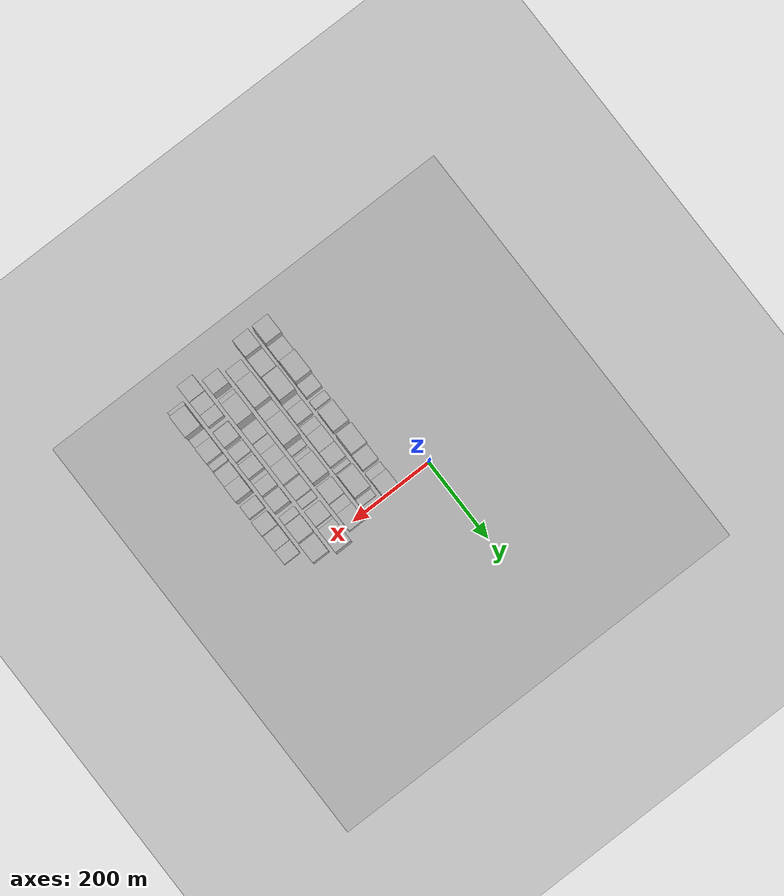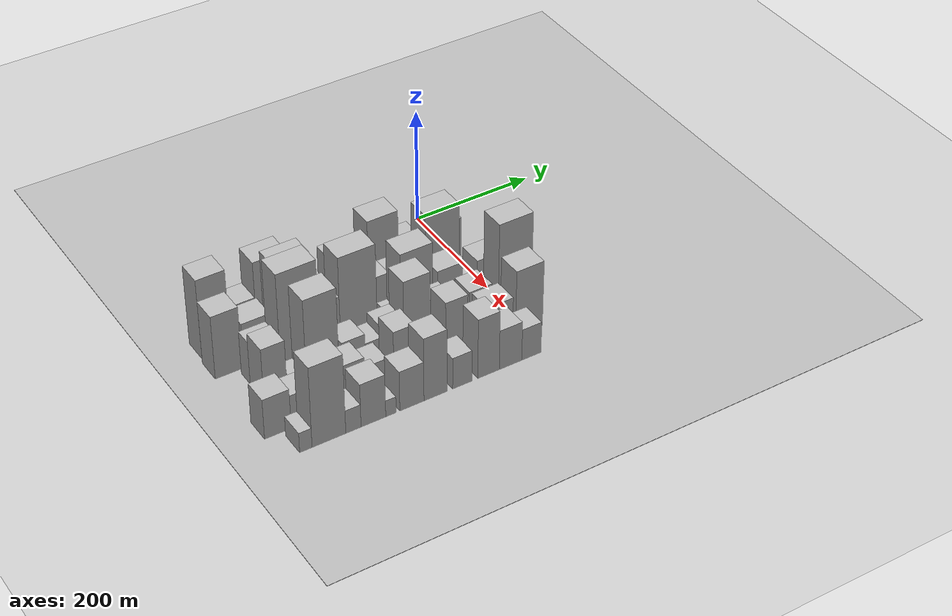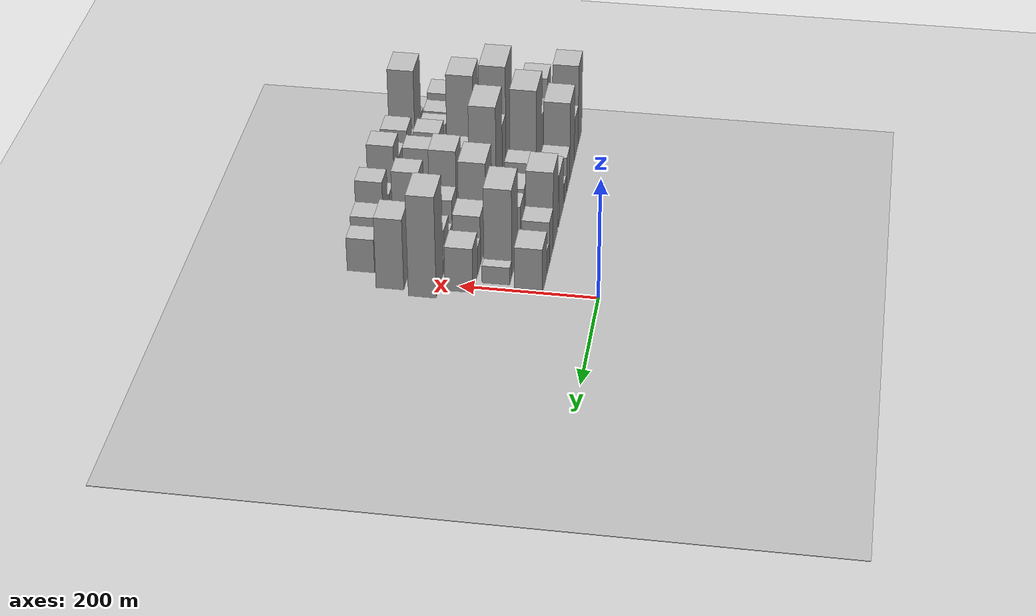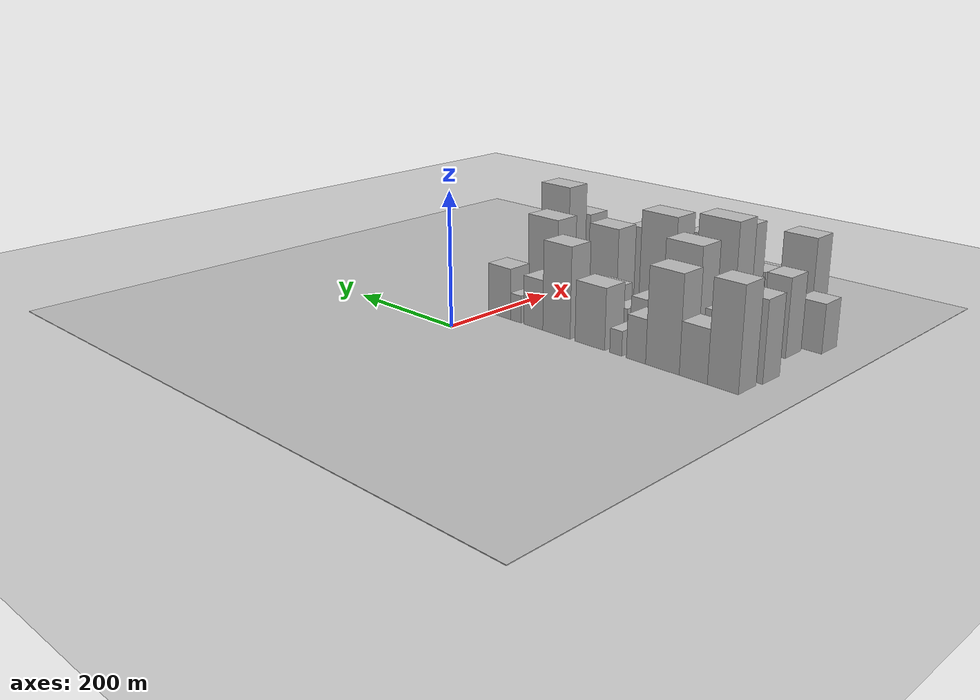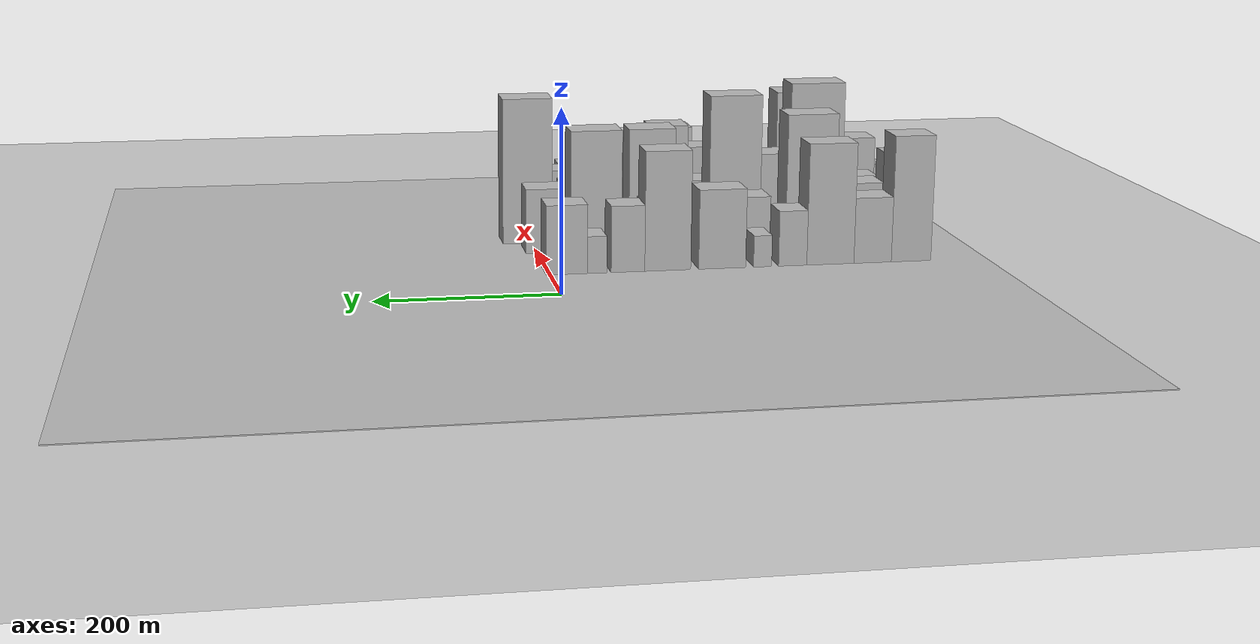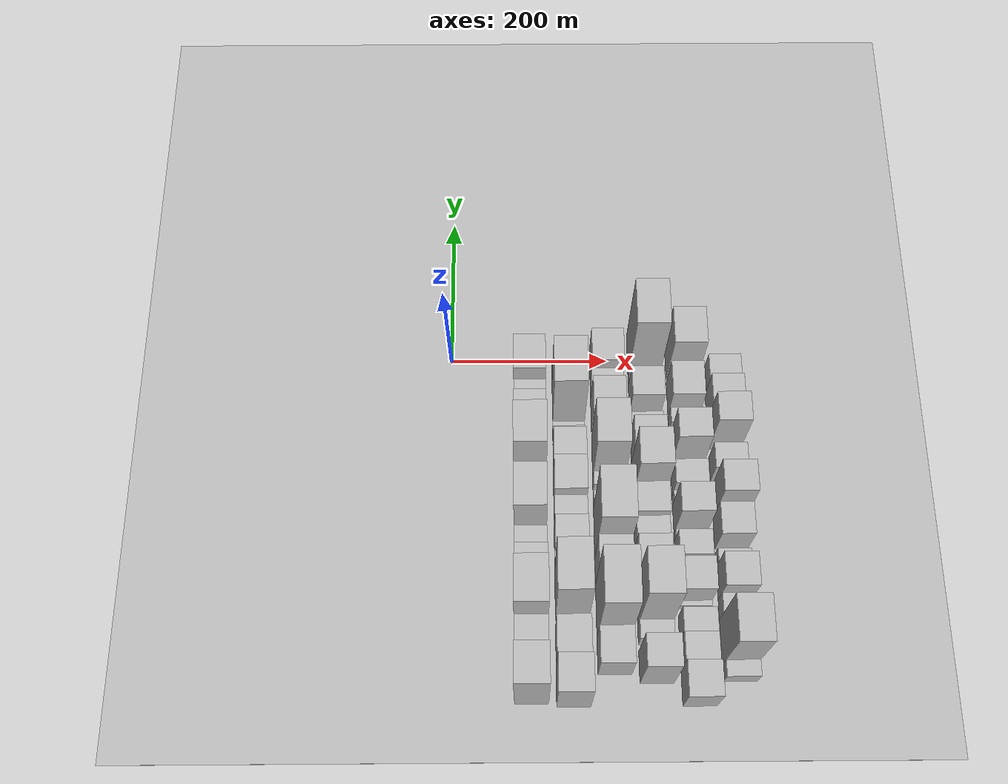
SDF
<sdf version="1.6">
 <world name="default">
  <include><name>ground_plane_1</name><uri>model://HANNAS_ground_plane</uri></include>
  <include>
   <name>ground_plane_2</name>
   <uri>model://HANNAS_ground_plane</uri>
   <pose>100 0 0  0 0 0</pose>
  </include>
  <model name="building_12">
   <static>1</static>
   <pose>100.0000 -411.0551 0 0.000000 0.000000 0.000000</pose>
   <link name="link">
    <pose>0 0 72.00 0 0 0</pose>
    <collision name="collision"><geometry><box><size>40.0000 46.2196 144.0000</size></box></geometry></collision>
    <visual name="visual">
     <cast_shadows>0</cast_shadows>
     <geometry><box><size>40.0000 46.2196 144.0000</size></box></geometry>
     <material>
      <script>
       <uri>model://HANNAS_wall/materials/scripts</uri>
       <uri>model://HANNAS_wall/materials/textures</uri>
       <name>vrc/HANNAS_wall</name>
      </script>
     </material>
    </visual>
   </link>
  </model>
  <model name="building_13">
   <static>1</static>
   <pose>100.0000 -366.1930 0 0.000000 0.000000 0.000000</pose>
   <link name="link">
    <pose>0 0 37.50 0 0 0</pose>
    <collision name="collision"><geometry><box><size>40.0000 43.5047 75.0000</size></box></geometry></collision>
    <visual name="visual">
     <cast_shadows>0</cast_shadows>
     <geometry><box><size>40.0000 43.5047 75.0000</size></box></geometry>
     <material>
      <script>
       <uri>model://HANNAS_wall/materials/scripts</uri>
       <uri>model://HANNAS_wall/materials/textures</uri>
       <name>vrc/HANNAS_wall</name>
      </script>
     </material>
    </visual>
   </link>
  </model>
  <model name="building_14">
   <static>1</static>
   <pose>100.0000 -317.1864 0 0.000000 0.000000 0.000000</pose>
   <link name="link">
    <pose>0 0 69.00 0 0 0</pose>
    <collision name="collision"><geometry><box><size>40.0000 54.5084 138.0000</size></box></geometry></collision>
    <visual name="visual">
     <cast_shadows>0</cast_shadows>
     <geometry><box><size>40.0000 54.5084 138.0000</size></box></geometry>
     <material>
      <script>
       <uri>model://HANNAS_wall/materials/scripts</uri>
       <uri>model://HANNAS_wall/materials/textures</uri>
       <name>vrc/HANNAS_wall</name>
      </script>
     </material>
    </visual>
   </link>
  </model>
  <model name="building_15">
   <static>1</static>
   <pose>100.0000 -273.7449 0 0.000000 0.000000 0.000000</pose>
   <link name="link">
    <pose>0 0 31.50 0 0 0</pose>
    <collision name="collision"><geometry><box><size>40.0000 32.3744 63.0000</size></box></geometry></collision>
    <visual name="visual">
     <cast_shadows>0</cast_shadows>
     <geometry><box><size>40.0000 32.3744 63.0000</size></box></geometry>
     <material>
      <script>
       <uri>model://HANNAS_wall/materials/scripts</uri>
       <uri>model://HANNAS_wall/materials/textures</uri>
       <name>vrc/HANNAS_wall</name>
      </script>
     </material>
    </visual>
   </link>
  </model>
  <model name="building_16">
   <static>1</static>
   <pose>100.0000 -239.2086 0 0.000000 0.000000 0.000000</pose>
   <link name="link">
    <pose>0 0 18.00 0 0 0</pose>
    <collision name="collision"><geometry><box><size>40.0000 20.6983 36.0000</size></box></geometry></collision>
    <visual name="visual">
     <cast_shadows>0</cast_shadows>
     <geometry><box><size>40.0000 20.6983 36.0000</size></box></geometry>
     <material>
      <script>
       <uri>model://HANNAS_wall/materials/scripts</uri>
       <uri>model://HANNAS_wall/materials/textures</uri>
       <name>vrc/HANNAS_wall</name>
      </script>
     </material>
    </visual>
   </link>
  </model>
  <model name="building_17">
   <static>1</static>
   <pose>100.0000 -193.1272 0 0.000000 0.000000 0.000000</pose>
   <link name="link">
    <pose>0 0 45.00 0 0 0</pose>
    <collision name="collision"><geometry><box><size>40.0000 53.4645 90.0000</size></box></geometry></collision>
    <visual name="visual">
     <cast_shadows>0</cast_shadows>
     <geometry><box><size>40.0000 53.4645 90.0000</size></box></geometry>
     <material>
      <script>
       <uri>model://HANNAS_wall/materials/scripts</uri>
       <uri>model://HANNAS_wall/materials/textures</uri>
       <name>vrc/HANNAS_wall</name>
      </script>
     </material>
    </visual>
   </link>
  </model>
  <model name="building_18">
   <static>1</static>
   <pose>100.0000 -131.4494 0 0.000000 0.000000 0.000000</pose>
   <link name="link">
    <pose>0 0 67.50 0 0 0</pose>
    <collision name="collision"><geometry><box><size>40.0000 51.8910 135.0000</size></box></geometry></collision>
    <visual name="visual">
     <cast_shadows>0</cast_shadows>
     <geometry><box><size>40.0000 51.8910 135.0000</size></box></geometry>
     <material>
      <script>
       <uri>model://HANNAS_wall/materials/scripts</uri>
       <uri>model://HANNAS_wall/materials/textures</uri>
       <name>vrc/HANNAS_wall</name>
      </script>
     </material>
    </visual>
   </link>
  </model>
  <model name="building_19">
   <static>1</static>
   <pose>100.0000 -86.6380 0 0.000000 0.000000 0.000000</pose>
   <link name="link">
    <pose>0 0 37.50 0 0 0</pose>
    <collision name="collision"><geometry><box><size>40.0000 37.7317 75.0000</size></box></geometry></collision>
    <visual name="visual">
     <cast_shadows>0</cast_shadows>
     <geometry><box><size>40.0000 37.7317 75.0000</size></box></geometry>
     <material>
      <script>
       <uri>model://HANNAS_wall/materials/scripts</uri>
       <uri>model://HANNAS_wall/materials/textures</uri>
       <name>vrc/HANNAS_wall</name>
      </script>
     </material>
    </visual>
   </link>
  </model>
  <model name="building_20">
   <static>1</static>
   <pose>100.0000 -52.0958 0 0.000000 0.000000 0.000000</pose>
   <link name="link">
    <pose>0 0 21.00 0 0 0</pose>
    <collision name="collision"><geometry><box><size>40.0000 21.3527 42.0000</size></box></geometry></collision>
    <visual name="visual">
     <cast_shadows>0</cast_shadows>
     <geometry><box><size>40.0000 21.3527 42.0000</size></box></geometry>
     <material>
      <script>
       <uri>model://HANNAS_wall/materials/scripts</uri>
       <uri>model://HANNAS_wall/materials/textures</uri>
       <name>vrc/HANNAS_wall</name>
      </script>
     </material>
    </visual>
   </link>
  </model>
  <model name="building_21">
   <static>1</static>
   <pose>100.0000 -18.5230 0 0.000000 0.000000 0.000000</pose>
   <link name="link">
    <pose>0 0 39.00 0 0 0</pose>
    <collision name="collision"><geometry><box><size>40.0000 45.7930 78.0000</size></box></geometry></collision>
    <visual name="visual">
     <cast_shadows>0</cast_shadows>
     <geometry><box><size>40.0000 45.7930 78.0000</size></box></geometry>
     <material>
      <script>
       <uri>model://HANNAS_wall/materials/scripts</uri>
       <uri>model://HANNAS_wall/materials/textures</uri>
       <name>vrc/HANNAS_wall</name>
      </script>
     </material>
    </visual>
   </link>
  </model>
  <model name="building_54">
   <static>1</static>
   <pose>149.0000 -416.5007 0 0.000000 0.000000 0.000000</pose>
   <link name="link">
    <pose>0 0 57.00 0 0 0</pose>
    <collision name="collision"><geometry><box><size>40.0000 43.0515 114.0000</size></box></geometry></collision>
    <visual name="visual">
     <cast_shadows>0</cast_shadows>
     <geometry><box><size>40.0000 43.0515 114.0000</size></box></geometry>
     <material>
      <script>
       <uri>model://HANNAS_wall/materials/scripts</uri>
       <uri>model://HANNAS_wall/materials/textures</uri>
       <name>vrc/HANNAS_wall</name>
      </script>
     </material>
    </visual>
   </link>
  </model>
  <model name="building_55">
   <static>1</static>
   <pose>149.0000 -368.9236 0 0.000000 0.000000 0.000000</pose>
   <link name="link">
    <pose>0 0 40.50 0 0 0</pose>
    <collision name="collision"><geometry><box><size>40.0000 46.1028 81.0000</size></box></geometry></collision>
    <visual name="visual">
     <cast_shadows>0</cast_shadows>
     <geometry><box><size>40.0000 46.1028 81.0000</size></box></geometry>
     <material>
      <script>
       <uri>model://HANNAS_wall/materials/scripts</uri>
       <uri>model://HANNAS_wall/materials/textures</uri>
       <name>vrc/HANNAS_wall</name>
      </script>
     </material>
    </visual>
   </link>
  </model>
  <model name="building_56">
   <static>1</static>
   <pose>149.0000 -307.5715 0 0.000000 0.000000 0.000000</pose>
   <link name="link">
    <pose>0 0 81.00 0 0 0</pose>
    <collision name="collision"><geometry><box><size>40.0000 58.6014 162.0000</size></box></geometry></collision>
    <visual name="visual">
     <cast_shadows>0</cast_shadows>
     <geometry><box><size>40.0000 58.6014 162.0000</size></box></geometry>
     <material>
      <script>
       <uri>model://HANNAS_wall/materials/scripts</uri>
       <uri>model://HANNAS_wall/materials/textures</uri>
       <name>vrc/HANNAS_wall</name>
      </script>
     </material>
    </visual>
   </link>
  </model>
  <model name="building_57">
   <static>1</static>
   <pose>149.0000 -269.1952 0 0.000000 0.000000 0.000000</pose>
   <link name="link">
    <pose>0 0 16.50 0 0 0</pose>
    <collision name="collision"><geometry><box><size>40.0000 18.1513 33.0000</size></box></geometry></collision>
    <visual name="visual">
     <cast_shadows>0</cast_shadows>
     <geometry><box><size>40.0000 18.1513 33.0000</size></box></geometry>
     <material>
      <script>
       <uri>model://HANNAS_wall/materials/scripts</uri>
       <uri>model://HANNAS_wall/materials/textures</uri>
       <name>vrc/HANNAS_wall</name>
      </script>
     </material>
    </visual>
   </link>
  </model>
  <model name="building_58">
   <static>1</static>
   <pose>149.0000 -242.4211 0 0.000000 0.000000 0.000000</pose>
   <link name="link">
    <pose>0 0 34.50 0 0 0</pose>
    <collision name="collision"><geometry><box><size>40.0000 35.3968 69.0000</size></box></geometry></collision>
    <visual name="visual">
     <cast_shadows>0</cast_shadows>
     <geometry><box><size>40.0000 35.3968 69.0000</size></box></geometry>
     <material>
      <script>
       <uri>model://HANNAS_wall/materials/scripts</uri>
       <uri>model://HANNAS_wall/materials/textures</uri>
       <name>vrc/HANNAS_wall</name>
      </script>
     </material>
    </visual>
   </link>
  </model>
  <model name="building_59">
   <static>1</static>
   <pose>149.0000 -206.5990 0 0.000000 0.000000 0.000000</pose>
   <link name="link">
    <pose>0 0 24.00 0 0 0</pose>
    <collision name="collision"><geometry><box><size>40.0000 24.2474 48.0000</size></box></geometry></collision>
    <visual name="visual">
     <cast_shadows>0</cast_shadows>
     <geometry><box><size>40.0000 24.2474 48.0000</size></box></geometry>
     <material>
      <script>
       <uri>model://HANNAS_wall/materials/scripts</uri>
       <uri>model://HANNAS_wall/materials/textures</uri>
       <name>vrc/HANNAS_wall</name>
      </script>
     </material>
    </visual>
   </link>
  </model>
  <model name="building_60">
   <static>1</static>
   <pose>149.0000 -172.9735 0 0.000000 0.000000 0.000000</pose>
   <link name="link">
    <pose>0 0 36.00 0 0 0</pose>
    <collision name="collision"><geometry><box><size>40.0000 43.0035 72.0000</size></box></geometry></collision>
    <visual name="visual">
     <cast_shadows>0</cast_shadows>
     <geometry><box><size>40.0000 43.0035 72.0000</size></box></geometry>
     <material>
      <script>
       <uri>model://HANNAS_wall/materials/scripts</uri>
       <uri>model://HANNAS_wall/materials/textures</uri>
       <name>vrc/HANNAS_wall</name>
      </script>
     </material>
    </visual>
   </link>
  </model>
  <model name="building_61">
   <static>1</static>
   <pose>149.0000 -132.5704 0 0.000000 0.000000 0.000000</pose>
   <link name="link">
    <pose>0 0 33.00 0 0 0</pose>
    <collision name="collision"><geometry><box><size>40.0000 37.8027 66.0000</size></box></geometry></collision>
    <visual name="visual">
     <cast_shadows>0</cast_shadows>
     <geometry><box><size>40.0000 37.8027 66.0000</size></box></geometry>
     <material>
      <script>
       <uri>model://HANNAS_wall/materials/scripts</uri>
       <uri>model://HANNAS_wall/materials/textures</uri>
       <name>vrc/HANNAS_wall</name>
      </script>
     </material>
    </visual>
   </link>
  </model>
  <model name="building_62">
   <static>1</static>
   <pose>149.0000 -103.8948 0 0.000000 0.000000 0.000000</pose>
   <link name="link">
    <pose>0 0 13.50 0 0 0</pose>
    <collision name="collision"><geometry><box><size>40.0000 11.5485 27.0000</size></box></geometry></collision>
    <visual name="visual">
     <cast_shadows>0</cast_shadows>
     <geometry><box><size>40.0000 11.5485 27.0000</size></box></geometry>
     <material>
      <script>
       <uri>model://HANNAS_wall/materials/scripts</uri>
       <uri>model://HANNAS_wall/materials/textures</uri>
       <name>vrc/HANNAS_wall</name>
      </script>
     </material>
    </visual>
   </link>
  </model>
  <model name="building_63">
   <static>1</static>
   <pose>149.0000 -91.8014 0 0.000000 0.000000 0.000000</pose>
   <link name="link">
    <pose>0 0 7.50 0 0 0</pose>
    <collision name="collision"><geometry><box><size>40.0000 6.6384 15.0000</size></box></geometry></collision>
    <visual name="visual">
     <cast_shadows>0</cast_shadows>
     <geometry><box><size>40.0000 6.6384 15.0000</size></box></geometry>
     <material>
      <script>
       <uri>model://HANNAS_wall/materials/scripts</uri>
       <uri>model://HANNAS_wall/materials/textures</uri>
       <name>vrc/HANNAS_wall</name>
      </script>
     </material>
    </visual>
   </link>
  </model>
  <model name="building_64">
   <static>1</static>
   <pose>149.0000 -59.4787 0 0.000000 0.000000 0.000000</pose>
   <link name="link">
    <pose>0 0 75.00 0 0 0</pose>
    <collision name="collision"><geometry><box><size>40.0000 58.0070 150.0000</size></box></geometry></collision>
    <visual name="visual">
     <cast_shadows>0</cast_shadows>
     <geometry><box><size>40.0000 58.0070 150.0000</size></box></geometry>
     <material>
      <script>
       <uri>model://HANNAS_wall/materials/scripts</uri>
       <uri>model://HANNAS_wall/materials/textures</uri>
       <name>vrc/HANNAS_wall</name>
      </script>
     </material>
    </visual>
   </link>
  </model>
  <model name="building_65">
   <static>1</static>
   <pose>149.0000 -21.4790 0 0.000000 0.000000 0.000000</pose>
   <link name="link">
    <pose>0 0 15.00 0 0 0</pose>
    <collision name="collision"><geometry><box><size>40.0000 17.9924 30.0000</size></box></geometry></collision>
    <visual name="visual">
     <cast_shadows>0</cast_shadows>
     <geometry><box><size>40.0000 17.9924 30.0000</size></box></geometry>
     <material>
      <script>
       <uri>model://HANNAS_wall/materials/scripts</uri>
       <uri>model://HANNAS_wall/materials/textures</uri>
       <name>vrc/HANNAS_wall</name>
      </script>
     </material>
    </visual>
   </link>
  </model>
  <model name="building_102">
   <static>1</static>
   <pose>198.0000 -379.6760 0 0.000000 0.000000 0.000000</pose>
   <link name="link">
    <pose>0 0 39.00 0 0 0</pose>
    <collision name="collision"><geometry><box><size>40.0000 42.8140 78.0000</size></box></geometry></collision>
    <visual name="visual">
     <cast_shadows>0</cast_shadows>
     <geometry><box><size>40.0000 42.8140 78.0000</size></box></geometry>
     <material>
      <script>
       <uri>model://HANNAS_wall/materials/scripts</uri>
       <uri>model://HANNAS_wall/materials/textures</uri>
       <name>vrc/HANNAS_wall</name>
      </script>
     </material>
    </visual>
   </link>
  </model>
  <model name="building_103">
   <static>1</static>
   <pose>198.0000 -326.5186 0 0.000000 0.000000 0.000000</pose>
   <link name="link">
    <pose>0 0 94.50 0 0 0</pose>
    <collision name="collision"><geometry><box><size>40.0000 63.5009 189.0000</size></box></geometry></collision>
    <visual name="visual">
     <cast_shadows>0</cast_shadows>
     <geometry><box><size>40.0000 63.5009 189.0000</size></box></geometry>
     <material>
      <script>
       <uri>model://HANNAS_wall/materials/scripts</uri>
       <uri>model://HANNAS_wall/materials/textures</uri>
       <name>vrc/HANNAS_wall</name>
      </script>
     </material>
    </visual>
   </link>
  </model>
  <model name="building_104">
   <static>1</static>
   <pose>198.0000 -277.7684 0 0.000000 0.000000 0.000000</pose>
   <link name="link">
    <pose>0 0 54.00 0 0 0</pose>
    <collision name="collision"><geometry><box><size>40.0000 33.9993 108.0000</size></box></geometry></collision>
    <visual name="visual">
     <cast_shadows>0</cast_shadows>
     <geometry><box><size>40.0000 33.9993 108.0000</size></box></geometry>
     <material>
      <script>
       <uri>model://HANNAS_wall/materials/scripts</uri>
       <uri>model://HANNAS_wall/materials/textures</uri>
       <name>vrc/HANNAS_wall</name>
      </script>
     </material>
    </visual>
   </link>
  </model>
  <model name="building_105">
   <static>1</static>
   <pose>198.0000 -230.4215 0 0.000000 0.000000 0.000000</pose>
   <link name="link">
    <pose>0 0 88.50 0 0 0</pose>
    <collision name="collision"><geometry><box><size>40.0000 60.6945 177.0000</size></box></geometry></collision>
    <visual name="visual">
     <cast_shadows>0</cast_shadows>
     <geometry><box><size>40.0000 60.6945 177.0000</size></box></geometry>
     <material>
      <script>
       <uri>model://HANNAS_wall/materials/scripts</uri>
       <uri>model://HANNAS_wall/materials/textures</uri>
       <name>vrc/HANNAS_wall</name>
      </script>
     </material>
    </visual>
   </link>
  </model>
  <model name="building_106">
   <static>1</static>
   <pose>198.0000 -191.2135 0 0.000000 0.000000 0.000000</pose>
   <link name="link">
    <pose>0 0 15.00 0 0 0</pose>
    <collision name="collision"><geometry><box><size>40.0000 17.7216 30.0000</size></box></geometry></collision>
    <visual name="visual">
     <cast_shadows>0</cast_shadows>
     <geometry><box><size>40.0000 17.7216 30.0000</size></box></geometry>
     <material>
      <script>
       <uri>model://HANNAS_wall/materials/scripts</uri>
       <uri>model://HANNAS_wall/materials/textures</uri>
       <name>vrc/HANNAS_wall</name>
      </script>
     </material>
    </visual>
   </link>
  </model>
  <model name="building_107">
   <static>1</static>
   <pose>198.0000 -168.7446 0 0.000000 0.000000 0.000000</pose>
   <link name="link">
    <pose>0 0 16.50 0 0 0</pose>
    <collision name="collision"><geometry><box><size>40.0000 17.2161 33.0000</size></box></geometry></collision>
    <visual name="visual">
     <cast_shadows>0</cast_shadows>
     <geometry><box><size>40.0000 17.2161 33.0000</size></box></geometry>
     <material>
      <script>
       <uri>model://HANNAS_wall/materials/scripts</uri>
       <uri>model://HANNAS_wall/materials/textures</uri>
       <name>vrc/HANNAS_wall</name>
      </script>
     </material>
    </visual>
   </link>
  </model>
  <model name="building_108">
   <static>1</static>
   <pose>198.0000 -133.1053 0 0.000000 0.000000 0.000000</pose>
   <link name="link">
    <pose>0 0 70.50 0 0 0</pose>
    <collision name="collision"><geometry><box><size>40.0000 54.0625 141.0000</size></box></geometry></collision>
    <visual name="visual">
     <cast_shadows>0</cast_shadows>
     <geometry><box><size>40.0000 54.0625 141.0000</size></box></geometry>
     <material>
      <script>
       <uri>model://HANNAS_wall/materials/scripts</uri>
       <uri>model://HANNAS_wall/materials/textures</uri>
       <name>vrc/HANNAS_wall</name>
      </script>
     </material>
    </visual>
   </link>
  </model>
  <model name="building_109">
   <static>1</static>
   <pose>198.0000 -76.4127 0 0.000000 0.000000 0.000000</pose>
   <link name="link">
    <pose>0 0 42.00 0 0 0</pose>
    <collision name="collision"><geometry><box><size>40.0000 43.3227 84.0000</size></box></geometry></collision>
    <visual name="visual">
     <cast_shadows>0</cast_shadows>
     <geometry><box><size>40.0000 43.3227 84.0000</size></box></geometry>
     <material>
      <script>
       <uri>model://HANNAS_wall/materials/scripts</uri>
       <uri>model://HANNAS_wall/materials/textures</uri>
       <name>vrc/HANNAS_wall</name>
      </script>
     </material>
    </visual>
   </link>
  </model>
  <model name="building_110">
   <static>1</static>
   <pose>198.0000 -42.2496 0 0.000000 0.000000 0.000000</pose>
   <link name="link">
    <pose>0 0 24.00 0 0 0</pose>
    <collision name="collision"><geometry><box><size>40.0000 25.0037 48.0000</size></box></geometry></collision>
    <visual name="visual">
     <cast_shadows>0</cast_shadows>
     <geometry><box><size>40.0000 25.0037 48.0000</size></box></geometry>
     <material>
      <script>
       <uri>model://HANNAS_wall/materials/scripts</uri>
       <uri>model://HANNAS_wall/materials/textures</uri>
       <name>vrc/HANNAS_wall</name>
      </script>
     </material>
    </visual>
   </link>
  </model>
  <model name="building_111">
   <static>1</static>
   <pose>198.0000 -8.2611 0 0.000000 0.000000 0.000000</pose>
   <link name="link">
    <pose>0 0 37.50 0 0 0</pose>
    <collision name="collision"><geometry><box><size>40.0000 42.9733 75.0000</size></box></geometry></collision>
    <visual name="visual">
     <cast_shadows>0</cast_shadows>
     <geometry><box><size>40.0000 42.9733 75.0000</size></box></geometry>
     <material>
      <script>
       <uri>model://HANNAS_wall/materials/scripts</uri>
       <uri>model://HANNAS_wall/materials/textures</uri>
       <name>vrc/HANNAS_wall</name>
      </script>
     </material>
    </visual>
   </link>
  </model>
  <model name="building_149">
   <static>1</static>
   <pose>247.0000 -393.0388 0 0.000000 0.000000 0.000000</pose>
   <link name="link">
    <pose>0 0 57.00 0 0 0</pose>
    <collision name="collision"><geometry><box><size>40.0000 37.0504 114.0000</size></box></geometry></collision>
    <visual name="visual">
     <cast_shadows>0</cast_shadows>
     <geometry><box><size>40.0000 37.0504 114.0000</size></box></geometry>
     <material>
      <script>
       <uri>model://HANNAS_wall/materials/scripts</uri>
       <uri>model://HANNAS_wall/materials/textures</uri>
       <name>vrc/HANNAS_wall</name>
      </script>
     </material>
    </visual>
   </link>
  </model>
  <model name="building_150">
   <static>1</static>
   <pose>247.0000 -355.1822 0 0.000000 0.000000 0.000000</pose>
   <link name="link">
    <pose>0 0 19.50 0 0 0</pose>
    <collision name="collision"><geometry><box><size>40.0000 22.6629 39.0000</size></box></geometry></collision>
    <visual name="visual">
     <cast_shadows>0</cast_shadows>
     <geometry><box><size>40.0000 22.6629 39.0000</size></box></geometry>
     <material>
      <script>
       <uri>model://HANNAS_wall/materials/scripts</uri>
       <uri>model://HANNAS_wall/materials/textures</uri>
       <name>vrc/HANNAS_wall</name>
      </script>
     </material>
    </visual>
   </link>
  </model>
  <model name="building_151">
   <static>1</static>
   <pose>247.0000 -317.6008 0 0.000000 0.000000 0.000000</pose>
   <link name="link">
    <pose>0 0 85.50 0 0 0</pose>
    <collision name="collision"><geometry><box><size>40.0000 52.5000 171.0000</size></box></geometry></collision>
    <visual name="visual">
     <cast_shadows>0</cast_shadows>
     <geometry><box><size>40.0000 52.5000 171.0000</size></box></geometry>
     <material>
      <script>
       <uri>model://HANNAS_wall/materials/scripts</uri>
       <uri>model://HANNAS_wall/materials/textures</uri>
       <name>vrc/HANNAS_wall</name>
      </script>
     </material>
    </visual>
   </link>
  </model>
  <model name="building_152">
   <static>1</static>
   <pose>247.0000 -267.5669 0 0.000000 0.000000 0.000000</pose>
   <link name="link">
    <pose>0 0 34.50 0 0 0</pose>
    <collision name="collision"><geometry><box><size>40.0000 37.5678 69.0000</size></box></geometry></collision>
    <visual name="visual">
     <cast_shadows>0</cast_shadows>
     <geometry><box><size>40.0000 37.5678 69.0000</size></box></geometry>
     <material>
      <script>
       <uri>model://HANNAS_wall/materials/scripts</uri>
       <uri>model://HANNAS_wall/materials/textures</uri>
       <name>vrc/HANNAS_wall</name>
      </script>
     </material>
    </visual>
   </link>
  </model>
  <model name="building_153">
   <static>1</static>
   <pose>247.0000 -235.2965 0 0.000000 0.000000 0.000000</pose>
   <link name="link">
    <pose>0 0 25.50 0 0 0</pose>
    <collision name="collision"><geometry><box><size>40.0000 26.9730 51.0000</size></box></geometry></collision>
    <visual name="visual">
     <cast_shadows>0</cast_shadows>
     <geometry><box><size>40.0000 26.9730 51.0000</size></box></geometry>
     <material>
      <script>
       <uri>model://HANNAS_wall/materials/scripts</uri>
       <uri>model://HANNAS_wall/materials/textures</uri>
       <name>vrc/HANNAS_wall</name>
      </script>
     </material>
    </visual>
   </link>
  </model>
  <model name="building_154">
   <static>1</static>
   <pose>247.0000 -203.3792 0 0.000000 0.000000 0.000000</pose>
   <link name="link">
    <pose>0 0 34.50 0 0 0</pose>
    <collision name="collision"><geometry><box><size>40.0000 36.8616 69.0000</size></box></geometry></collision>
    <visual name="visual">
     <cast_shadows>0</cast_shadows>
     <geometry><box><size>40.0000 36.8616 69.0000</size></box></geometry>
     <material>
      <script>
       <uri>model://HANNAS_wall/materials/scripts</uri>
       <uri>model://HANNAS_wall/materials/textures</uri>
       <name>vrc/HANNAS_wall</name>
      </script>
     </material>
    </visual>
   </link>
  </model>
  <model name="building_155">
   <static>1</static>
   <pose>247.0000 -162.6382 0 0.000000 0.000000 0.000000</pose>
   <link name="link">
    <pose>0 0 67.50 0 0 0</pose>
    <collision name="collision"><geometry><box><size>40.0000 44.6204 135.0000</size></box></geometry></collision>
    <visual name="visual">
     <cast_shadows>0</cast_shadows>
     <geometry><box><size>40.0000 44.6204 135.0000</size></box></geometry>
     <material>
      <script>
       <uri>model://HANNAS_wall/materials/scripts</uri>
       <uri>model://HANNAS_wall/materials/textures</uri>
       <name>vrc/HANNAS_wall</name>
      </script>
     </material>
    </visual>
   </link>
  </model>
  <model name="building_156">
   <static>1</static>
   <pose>247.0000 -121.5310 0 0.000000 0.000000 0.000000</pose>
   <link name="link">
    <pose>0 0 37.50 0 0 0</pose>
    <collision name="collision"><geometry><box><size>40.0000 37.5939 75.0000</size></box></geometry></collision>
    <visual name="visual">
     <cast_shadows>0</cast_shadows>
     <geometry><box><size>40.0000 37.5939 75.0000</size></box></geometry>
     <material>
      <script>
       <uri>model://HANNAS_wall/materials/scripts</uri>
       <uri>model://HANNAS_wall/materials/textures</uri>
       <name>vrc/HANNAS_wall</name>
      </script>
     </material>
    </visual>
   </link>
  </model>
  <model name="building_157">
   <static>1</static>
   <pose>247.0000 -93.0279 0 0.000000 0.000000 0.000000</pose>
   <link name="link">
    <pose>0 0 18.00 0 0 0</pose>
    <collision name="collision"><geometry><box><size>40.0000 19.4123 36.0000</size></box></geometry></collision>
    <visual name="visual">
     <cast_shadows>0</cast_shadows>
     <geometry><box><size>40.0000 19.4123 36.0000</size></box></geometry>
     <material>
      <script>
       <uri>model://HANNAS_wall/materials/scripts</uri>
       <uri>model://HANNAS_wall/materials/textures</uri>
       <name>vrc/HANNAS_wall</name>
      </script>
     </material>
    </visual>
   </link>
  </model>
  <model name="building_158">
   <static>1</static>
   <pose>247.0000 -54.9747 0 0.000000 0.000000 0.000000</pose>
   <link name="link">
    <pose>0 0 34.50 0 0 0</pose>
    <collision name="collision"><geometry><box><size>40.0000 38.6943 69.0000</size></box></geometry></collision>
    <visual name="visual">
     <cast_shadows>0</cast_shadows>
     <geometry><box><size>40.0000 38.6943 69.0000</size></box></geometry>
     <material>
      <script>
       <uri>model://HANNAS_wall/materials/scripts</uri>
       <uri>model://HANNAS_wall/materials/textures</uri>
       <name>vrc/HANNAS_wall</name>
      </script>
     </material>
    </visual>
   </link>
  </model>
  <model name="building_159">
   <static>1</static>
   <pose>247.0000 -29.9954 0 0.000000 0.000000 0.000000</pose>
   <link name="link">
    <pose>0 0 12.00 0 0 0</pose>
    <collision name="collision"><geometry><box><size>40.0000 11.2643 24.0000</size></box></geometry></collision>
    <visual name="visual">
     <cast_shadows>0</cast_shadows>
     <geometry><box><size>40.0000 11.2643 24.0000</size></box></geometry>
     <material>
      <script>
       <uri>model://HANNAS_wall/materials/scripts</uri>
       <uri>model://HANNAS_wall/materials/textures</uri>
       <name>vrc/HANNAS_wall</name>
      </script>
     </material>
    </visual>
   </link>
  </model>
  <model name="building_160">
   <static>1</static>
   <pose>247.0000 4.5911 0 0.000000 0.000000 0.000000</pose>
   <link name="link">
    <pose>0 0 85.50 0 0 0</pose>
    <collision name="collision"><geometry><box><size>40.0000 57.9086 171.0000</size></box></geometry></collision>
    <visual name="visual">
     <cast_shadows>0</cast_shadows>
     <geometry><box><size>40.0000 57.9086 171.0000</size></box></geometry>
     <material>
      <script>
       <uri>model://HANNAS_wall/materials/scripts</uri>
       <uri>model://HANNAS_wall/materials/textures</uri>
       <name>vrc/HANNAS_wall</name>
      </script>
     </material>
    </visual>
   </link>
  </model>
  <model name="building_195">
   <static>1</static>
   <pose>296.0000 -417.0622 0 0.000000 0.000000 0.000000</pose>
   <link name="link">
    <pose>0 0 36.00 0 0 0</pose>
    <collision name="collision"><geometry><box><size>40.0000 41.6288 72.0000</size></box></geometry></collision>
    <visual name="visual">
     <cast_shadows>0</cast_shadows>
     <geometry><box><size>40.0000 41.6288 72.0000</size></box></geometry>
     <material>
      <script>
       <uri>model://HANNAS_wall/materials/scripts</uri>
       <uri>model://HANNAS_wall/materials/textures</uri>
       <name>vrc/HANNAS_wall</name>
      </script>
     </material>
    </visual>
   </link>
  </model>
  <model name="building_196">
   <static>1</static>
   <pose>296.0000 -379.2894 0 0.000000 0.000000 0.000000</pose>
   <link name="link">
    <pose>0 0 30.00 0 0 0</pose>
    <collision name="collision"><geometry><box><size>40.0000 33.9169 60.0000</size></box></geometry></collision>
    <visual name="visual">
     <cast_shadows>0</cast_shadows>
     <geometry><box><size>40.0000 33.9169 60.0000</size></box></geometry>
     <material>
      <script>
       <uri>model://HANNAS_wall/materials/scripts</uri>
       <uri>model://HANNAS_wall/materials/textures</uri>
       <name>vrc/HANNAS_wall</name>
      </script>
     </material>
    </visual>
   </link>
  </model>
  <model name="building_197">
   <static>1</static>
   <pose>296.0000 -347.7714 0 0.000000 0.000000 0.000000</pose>
   <link name="link">
    <pose>0 0 28.50 0 0 0</pose>
    <collision name="collision"><geometry><box><size>40.0000 29.1191 57.0000</size></box></geometry></collision>
    <visual name="visual">
     <cast_shadows>0</cast_shadows>
     <geometry><box><size>40.0000 29.1191 57.0000</size></box></geometry>
     <material>
      <script>
       <uri>model://HANNAS_wall/materials/scripts</uri>
       <uri>model://HANNAS_wall/materials/textures</uri>
       <name>vrc/HANNAS_wall</name>
      </script>
     </material>
    </visual>
   </link>
  </model>
  <model name="building_198">
   <static>1</static>
   <pose>296.0000 -319.9336 0 0.000000 0.000000 0.000000</pose>
   <link name="link">
    <pose>0 0 7.50 0 0 0</pose>
    <collision name="collision"><geometry><box><size>40.0000 6.5566 15.0000</size></box></geometry></collision>
    <visual name="visual">
     <cast_shadows>0</cast_shadows>
     <geometry><box><size>40.0000 6.5566 15.0000</size></box></geometry>
     <material>
      <script>
       <uri>model://HANNAS_wall/materials/scripts</uri>
       <uri>model://HANNAS_wall/materials/textures</uri>
       <name>vrc/HANNAS_wall</name>
      </script>
     </material>
    </visual>
   </link>
  </model>
  <model name="building_199">
   <static>1</static>
   <pose>296.0000 -297.3502 0 0.000000 0.000000 0.000000</pose>
   <link name="link">
    <pose>0 0 37.50 0 0 0</pose>
    <collision name="collision"><geometry><box><size>40.0000 38.6101 75.0000</size></box></geometry></collision>
    <visual name="visual">
     <cast_shadows>0</cast_shadows>
     <geometry><box><size>40.0000 38.6101 75.0000</size></box></geometry>
     <material>
      <script>
       <uri>model://HANNAS_wall/materials/scripts</uri>
       <uri>model://HANNAS_wall/materials/textures</uri>
       <name>vrc/HANNAS_wall</name>
      </script>
     </material>
    </visual>
   </link>
  </model>
  <model name="building_200">
   <static>1</static>
   <pose>296.0000 -255.9821 0 0.000000 0.000000 0.000000</pose>
   <link name="link">
    <pose>0 0 28.50 0 0 0</pose>
    <collision name="collision"><geometry><box><size>40.0000 30.1261 57.0000</size></box></geometry></collision>
    <visual name="visual">
     <cast_shadows>0</cast_shadows>
     <geometry><box><size>40.0000 30.1261 57.0000</size></box></geometry>
     <material>
      <script>
       <uri>model://HANNAS_wall/materials/scripts</uri>
       <uri>model://HANNAS_wall/materials/textures</uri>
       <name>vrc/HANNAS_wall</name>
      </script>
     </material>
    </visual>
   </link>
  </model>
  <model name="building_201">
   <static>1</static>
   <pose>296.0000 -235.9000 0 0.000000 0.000000 0.000000</pose>
   <link name="link">
    <pose>0 0 12.00 0 0 0</pose>
    <collision name="collision"><geometry><box><size>40.0000 10.0382 24.0000</size></box></geometry></collision>
    <visual name="visual">
     <cast_shadows>0</cast_shadows>
     <geometry><box><size>40.0000 10.0382 24.0000</size></box></geometry>
     <material>
      <script>
       <uri>model://HANNAS_wall/materials/scripts</uri>
       <uri>model://HANNAS_wall/materials/textures</uri>
       <name>vrc/HANNAS_wall</name>
      </script>
     </material>
    </visual>
   </link>
  </model>
  <model name="building_202">
   <static>1</static>
   <pose>296.0000 -213.1271 0 0.000000 0.000000 0.000000</pose>
   <link name="link">
    <pose>0 0 49.50 0 0 0</pose>
    <collision name="collision"><geometry><box><size>40.0000 35.5075 99.0000</size></box></geometry></collision>
    <visual name="visual">
     <cast_shadows>0</cast_shadows>
     <geometry><box><size>40.0000 35.5075 99.0000</size></box></geometry>
     <material>
      <script>
       <uri>model://HANNAS_wall/materials/scripts</uri>
       <uri>model://HANNAS_wall/materials/textures</uri>
       <name>vrc/HANNAS_wall</name>
      </script>
     </material>
    </visual>
   </link>
  </model>
  <model name="building_203">
   <static>1</static>
   <pose>296.0000 -189.4493 0 0.000000 0.000000 0.000000</pose>
   <link name="link">
    <pose>0 0 13.50 0 0 0</pose>
    <collision name="collision"><geometry><box><size>40.0000 11.8481 27.0000</size></box></geometry></collision>
    <visual name="visual">
     <cast_shadows>0</cast_shadows>
     <geometry><box><size>40.0000 11.8481 27.0000</size></box></geometry>
     <material>
      <script>
       <uri>model://HANNAS_wall/materials/scripts</uri>
       <uri>model://HANNAS_wall/materials/textures</uri>
       <name>vrc/HANNAS_wall</name>
      </script>
     </material>
    </visual>
   </link>
  </model>
  <model name="building_204">
   <static>1</static>
   <pose>296.0000 -168.3332 0 0.000000 0.000000 0.000000</pose>
   <link name="link">
    <pose>0 0 28.50 0 0 0</pose>
    <collision name="collision"><geometry><box><size>40.0000 30.3839 57.0000</size></box></geometry></collision>
    <visual name="visual">
     <cast_shadows>0</cast_shadows>
     <geometry><box><size>40.0000 30.3839 57.0000</size></box></geometry>
     <material>
      <script>
       <uri>model://HANNAS_wall/materials/scripts</uri>
       <uri>model://HANNAS_wall/materials/textures</uri>
       <name>vrc/HANNAS_wall</name>
      </script>
     </material>
    </visual>
   </link>
  </model>
  <model name="building_205">
   <static>1</static>
   <pose>296.0000 -126.6685 0 0.000000 0.000000 0.000000</pose>
   <link name="link">
    <pose>0 0 57.00 0 0 0</pose>
    <collision name="collision"><geometry><box><size>40.0000 36.9455 114.0000</size></box></geometry></collision>
    <visual name="visual">
     <cast_shadows>0</cast_shadows>
     <geometry><box><size>40.0000 36.9455 114.0000</size></box></geometry>
     <material>
      <script>
       <uri>model://HANNAS_wall/materials/scripts</uri>
       <uri>model://HANNAS_wall/materials/textures</uri>
       <name>vrc/HANNAS_wall</name>
      </script>
     </material>
    </visual>
   </link>
  </model>
  <model name="building_206">
   <static>1</static>
   <pose>296.0000 -89.0817 0 0.000000 0.000000 0.000000</pose>
   <link name="link">
    <pose>0 0 19.50 0 0 0</pose>
    <collision name="collision"><geometry><box><size>40.0000 20.2281 39.0000</size></box></geometry></collision>
    <visual name="visual">
     <cast_shadows>0</cast_shadows>
     <geometry><box><size>40.0000 20.2281 39.0000</size></box></geometry>
     <material>
      <script>
       <uri>model://HANNAS_wall/materials/scripts</uri>
       <uri>model://HANNAS_wall/materials/textures</uri>
       <name>vrc/HANNAS_wall</name>
      </script>
     </material>
    </visual>
   </link>
  </model>
  <model name="building_207">
   <static>1</static>
   <pose>296.0000 -53.6122 0 0.000000 0.000000 0.000000</pose>
   <link name="link">
    <pose>0 0 37.50 0 0 0</pose>
    <collision name="collision"><geometry><box><size>40.0000 44.7109 75.0000</size></box></geometry></collision>
    <visual name="visual">
     <cast_shadows>0</cast_shadows>
     <geometry><box><size>40.0000 44.7109 75.0000</size></box></geometry>
     <material>
      <script>
       <uri>model://HANNAS_wall/materials/scripts</uri>
       <uri>model://HANNAS_wall/materials/textures</uri>
       <name>vrc/HANNAS_wall</name>
      </script>
     </material>
    </visual>
   </link>
  </model>
  <model name="building_208">
   <static>1</static>
   <pose>296.0000 -2.7948 0 0.000000 0.000000 0.000000</pose>
   <link name="link">
    <pose>0 0 60.00 0 0 0</pose>
    <collision name="collision"><geometry><box><size>40.0000 46.9239 120.0000</size></box></geometry></collision>
    <visual name="visual">
     <cast_shadows>0</cast_shadows>
     <geometry><box><size>40.0000 46.9239 120.0000</size></box></geometry>
     <material>
      <script>
       <uri>model://HANNAS_wall/materials/scripts</uri>
       <uri>model://HANNAS_wall/materials/textures</uri>
       <name>vrc/HANNAS_wall</name>
      </script>
     </material>
    </visual>
   </link>
  </model>
  <model name="building_243">
   <static>1</static>
   <pose>345.0000 -400.3602 0 0.000000 0.000000 0.000000</pose>
   <link name="link">
    <pose>0 0 18.00 0 0 0</pose>
    <collision name="collision"><geometry><box><size>40.0000 19.2983 36.0000</size></box></geometry></collision>
    <visual name="visual">
     <cast_shadows>0</cast_shadows>
     <geometry><box><size>40.0000 19.2983 36.0000</size></box></geometry>
     <material>
      <script>
       <uri>model://HANNAS_wall/materials/scripts</uri>
       <uri>model://HANNAS_wall/materials/textures</uri>
       <name>vrc/HANNAS_wall</name>
      </script>
     </material>
    </visual>
   </link>
  </model>
  <model name="building_244">
   <static>1</static>
   <pose>345.0000 -364.1601 0 0.000000 0.000000 0.000000</pose>
   <link name="link">
    <pose>0 0 72.00 0 0 0</pose>
    <collision name="collision"><geometry><box><size>40.0000 53.1020 144.0000</size></box></geometry></collision>
    <visual name="visual">
     <cast_shadows>0</cast_shadows>
     <geometry><box><size>40.0000 53.1020 144.0000</size></box></geometry>
     <material>
      <script>
       <uri>model://HANNAS_wall/materials/scripts</uri>
       <uri>model://HANNAS_wall/materials/textures</uri>
       <name>vrc/HANNAS_wall</name>
      </script>
     </material>
    </visual>
   </link>
  </model>
  <model name="building_245">
   <static>1</static>
   <pose>345.0000 -325.4912 0 0.000000 0.000000 0.000000</pose>
   <link name="link">
    <pose>0 0 21.00 0 0 0</pose>
    <collision name="collision"><geometry><box><size>40.0000 24.2358 42.0000</size></box></geometry></collision>
    <visual name="visual">
     <cast_shadows>0</cast_shadows>
     <geometry><box><size>40.0000 24.2358 42.0000</size></box></geometry>
     <material>
      <script>
       <uri>model://HANNAS_wall/materials/scripts</uri>
       <uri>model://HANNAS_wall/materials/textures</uri>
       <name>vrc/HANNAS_wall</name>
      </script>
     </material>
    </visual>
   </link>
  </model>
  <model name="building_246">
   <static>1</static>
   <pose>345.0000 -293.5431 0 0.000000 0.000000 0.000000</pose>
   <link name="link">
    <pose>0 0 39.00 0 0 0</pose>
    <collision name="collision"><geometry><box><size>40.0000 39.6604 78.0000</size></box></geometry></collision>
    <visual name="visual">
     <cast_shadows>0</cast_shadows>
     <geometry><box><size>40.0000 39.6604 78.0000</size></box></geometry>
     <material>
      <script>
       <uri>model://HANNAS_wall/materials/scripts</uri>
       <uri>model://HANNAS_wall/materials/textures</uri>
       <name>vrc/HANNAS_wall</name>
      </script>
     </material>
    </visual>
   </link>
  </model>
  <model name="building_247">
   <static>1</static>
   <pose>345.0000 -265.3289 0 0.000000 0.000000 0.000000</pose>
   <link name="link">
    <pose>0 0 15.00 0 0 0</pose>
    <collision name="collision"><geometry><box><size>40.0000 16.7678 30.0000</size></box></geometry></collision>
    <visual name="visual">
     <cast_shadows>0</cast_shadows>
     <geometry><box><size>40.0000 16.7678 30.0000</size></box></geometry>
     <material>
      <script>
       <uri>model://HANNAS_wall/materials/scripts</uri>
       <uri>model://HANNAS_wall/materials/textures</uri>
       <name>vrc/HANNAS_wall</name>
      </script>
     </material>
    </visual>
   </link>
  </model>
  <model name="building_248">
   <static>1</static>
   <pose>345.0000 -231.2342 0 0.000000 0.000000 0.000000</pose>
   <link name="link">
    <pose>0 0 36.00 0 0 0</pose>
    <collision name="collision"><geometry><box><size>40.0000 39.4216 72.0000</size></box></geometry></collision>
    <visual name="visual">
     <cast_shadows>0</cast_shadows>
     <geometry><box><size>40.0000 39.4216 72.0000</size></box></geometry>
     <material>
      <script>
       <uri>model://HANNAS_wall/materials/scripts</uri>
       <uri>model://HANNAS_wall/materials/textures</uri>
       <name>vrc/HANNAS_wall</name>
      </script>
     </material>
    </visual>
   </link>
  </model>
  <model name="building_249">
   <static>1</static>
   <pose>345.0000 -192.3512 0 0.000000 0.000000 0.000000</pose>
   <link name="link">
    <pose>0 0 57.00 0 0 0</pose>
    <collision name="collision"><geometry><box><size>40.0000 38.3443 114.0000</size></box></geometry></collision>
    <visual name="visual">
     <cast_shadows>0</cast_shadows>
     <geometry><box><size>40.0000 38.3443 114.0000</size></box></geometry>
     <material>
      <script>
       <uri>model://HANNAS_wall/materials/scripts</uri>
       <uri>model://HANNAS_wall/materials/textures</uri>
       <name>vrc/HANNAS_wall</name>
      </script>
     </material>
    </visual>
   </link>
  </model>
  <model name="building_250">
   <static>1</static>
   <pose>345.0000 -148.1510 0 0.000000 0.000000 0.000000</pose>
   <link name="link">
    <pose>0 0 28.50 0 0 0</pose>
    <collision name="collision"><geometry><box><size>40.0000 32.0562 57.0000</size></box></geometry></collision>
    <visual name="visual">
     <cast_shadows>0</cast_shadows>
     <geometry><box><size>40.0000 32.0562 57.0000</size></box></geometry>
     <material>
      <script>
       <uri>model://HANNAS_wall/materials/scripts</uri>
       <uri>model://HANNAS_wall/materials/textures</uri>
       <name>vrc/HANNAS_wall</name>
      </script>
     </material>
    </visual>
   </link>
  </model>
  <model name="building_251">
   <static>1</static>
   <pose>345.0000 -104.0137 0 0.000000 0.000000 0.000000</pose>
   <link name="link">
    <pose>0 0 54.00 0 0 0</pose>
    <collision name="collision"><geometry><box><size>40.0000 36.2183 108.0000</size></box></geometry></collision>
    <visual name="visual">
     <cast_shadows>0</cast_shadows>
     <geometry><box><size>40.0000 36.2183 108.0000</size></box></geometry>
     <material>
      <script>
       <uri>model://HANNAS_wall/materials/scripts</uri>
       <uri>model://HANNAS_wall/materials/textures</uri>
       <name>vrc/HANNAS_wall</name>
      </script>
     </material>
    </visual>
   </link>
  </model>
  <model name="building_252">
   <static>1</static>
   <pose>345.0000 -66.7817 0 0.000000 0.000000 0.000000</pose>
   <link name="link">
    <pose>0 0 36.00 0 0 0</pose>
    <collision name="collision"><geometry><box><size>40.0000 38.2458 72.0000</size></box></geometry></collision>
    <visual name="visual">
     <cast_shadows>0</cast_shadows>
     <geometry><box><size>40.0000 38.2458 72.0000</size></box></geometry>
     <material>
      <script>
       <uri>model://HANNAS_wall/materials/scripts</uri>
       <uri>model://HANNAS_wall/materials/textures</uri>
       <name>vrc/HANNAS_wall</name>
      </script>
     </material>
    </visual>
   </link>
  </model>
  <model name="building_253">
   <static>1</static>
   <pose>345.0000 -31.1344 0 0.000000 0.000000 0.000000</pose>
   <link name="link">
    <pose>0 0 28.50 0 0 0</pose>
    <collision name="collision"><geometry><box><size>40.0000 33.0487 57.0000</size></box></geometry></collision>
    <visual name="visual">
     <cast_shadows>0</cast_shadows>
     <geometry><box><size>40.0000 33.0487 57.0000</size></box></geometry>
     <material>
      <script>
       <uri>model://HANNAS_wall/materials/scripts</uri>
       <uri>model://HANNAS_wall/materials/textures</uri>
       <name>vrc/HANNAS_wall</name>
      </script>
     </material>
    </visual>
   </link>
  </model>
 </world>
</sdf>
